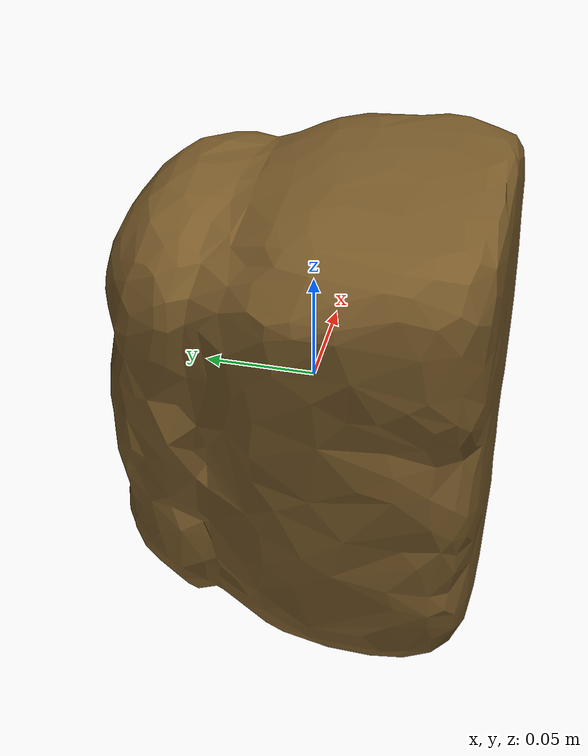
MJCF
<mujoco model="Bread_15">
  <compiler autolimits="true" boundmass="0.01" angle="radian"/>
  <default>
    <default class="/">
      <default class="__VISUAL_MJT__">
        <geom contype="0" conaffinity="0" group="0"/>
      </default>
      <default class="__STRUCTURAL_MJT__">
        <geom contype="8" conaffinity="15" group="4" friction="0.90000000000000002 0.90000000000000002 0.001" solref="0.025000000000000001 1" solimp="0.998 0.998 0.001"/>
      </default>
      <default class="__DYNAMIC_MJT__">
        <geom contype="1" conaffinity="15" group="4" friction="0.90000000000000002 0.90000000000000002 0.001" solref="0.025000000000000001 1" solimp="0.998 0.998 0.001"/>
      </default>
    </default>
  </default>
  <asset>
    <texture name="Bread6_Mat3" type="2d" file="Bread6_AlbedoTransparency.png"/>
    <material name="material_Bread6_Mat3" class="/" texture="Bread6_Mat3" specular="0.5" shininess="0.5" rgba="0.6323529 0.49061870000000002 0.23713239999999999 1"/>
    <mesh name="Bread_15_bread6_c_mesh" class="/" file="Bread_15_bread6_c_mesh/Bread_15_bread6_c_mesh.obj" scale="1 1 1"/>
  </asset>
  <worldbody>
    <body name="Bread_15">
      <joint name="Bread_15_free" class="/" type="free" pos="0 0 0" axis="0 0 1" stiffness="0" range="0 0" armature="0" damping="0.10000000000000001" frictionloss="0"/>
      <body name="Bread_15_bread6_c_mesh" pos="-0 0.00066 0" quat="1 0 0 0">
        <geom name="Bread_15_bread6_c_mesh" class="__VISUAL_MJT__" type="mesh" material="material_Bread6_Mat3" shellinertia="false" mesh="Bread_15_bread6_c_mesh"/>
        <geom name="Bread_15_PrimitiveCollider_0" class="__DYNAMIC_MJT__" type="box" size="0.090921223163604736 0.057085037231445312 0.11009826511144638" rgba="0 1 0 1" pos="-0 -0.027677854523062706 0" quat="1 0 0 0"/>
        <geom name="Bread_15_PrimitiveCollider_1" class="__DYNAMIC_MJT__" type="box" size="0.071629926562309265 0.026893595233559608 0.098514951765537262" rgba="0 1 0 1" pos="-0 0.056547276675701141 0" quat="1 0 0 0"/>
        <geom name="Bread_15_PrimitiveCollider_2" class="__DYNAMIC_MJT__" type="box" size="0.090921223163604736 0.057085037231445312 0.11009826511144638" rgba="0 1 0 1" pos="-0 -0.027677854523062706 0" quat="1 0 0 0"/>
        <geom name="Bread_15_PrimitiveCollider_3" class="__DYNAMIC_MJT__" type="box" size="0.071629926562309265 0.026893595233559608 0.098514951765537262" rgba="0 1 0 1" pos="-0 0.056547276675701141 0" quat="1 0 0 0"/>
      </body>
    </body>
  </worldbody>
</mujoco>
